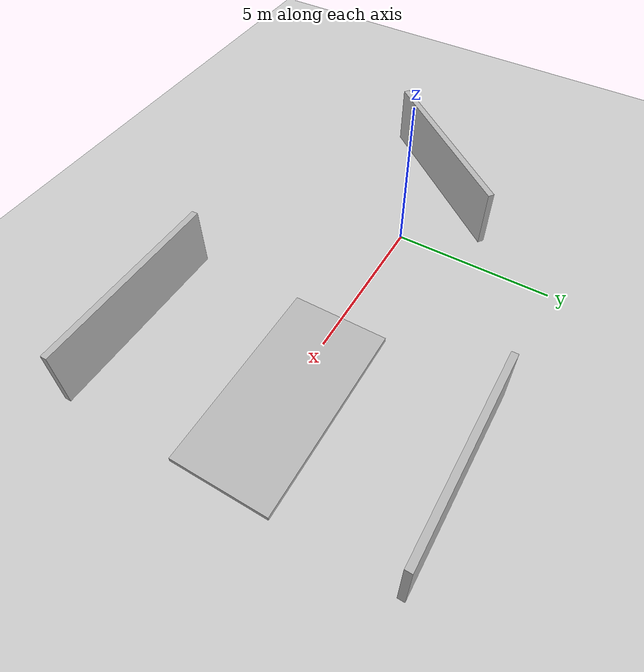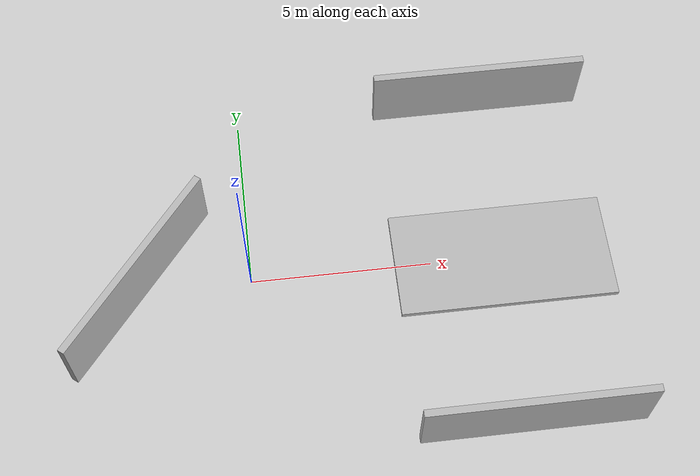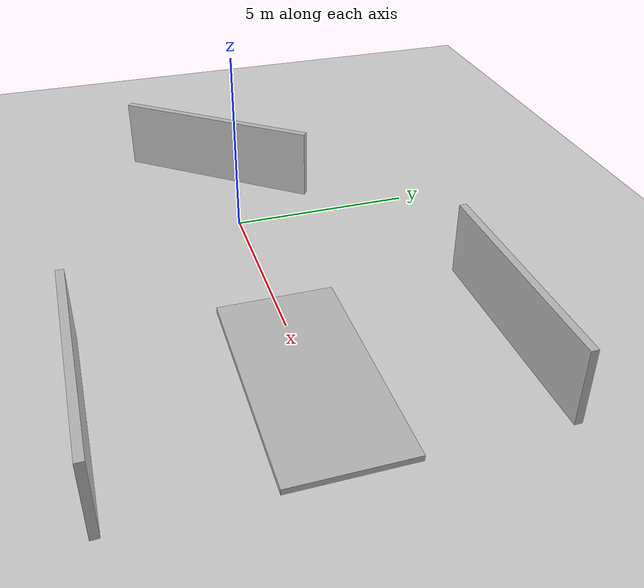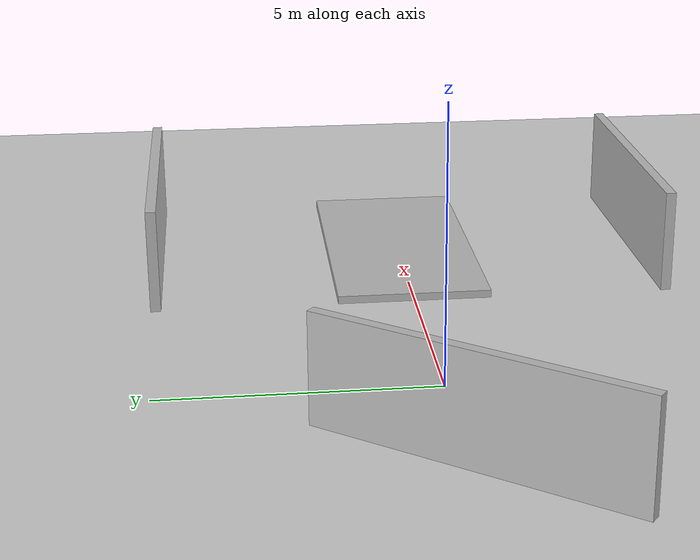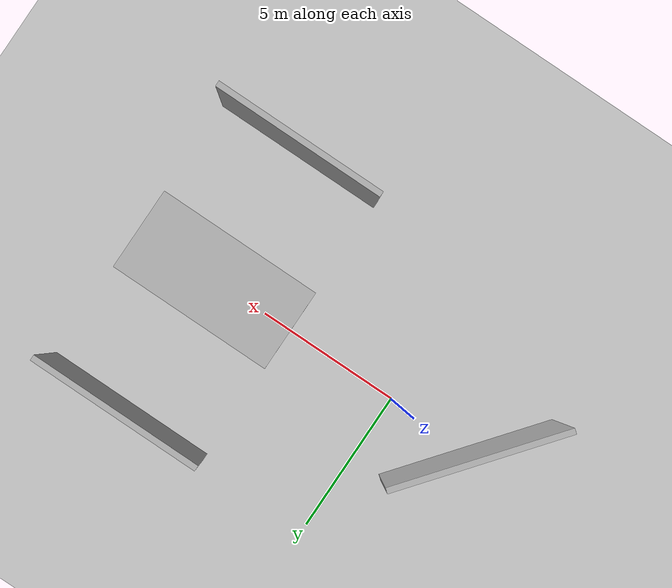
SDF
<?xml version="1.0" ?>
<sdf version="1.4">
	<world name="default">
		<scene>
			<shadows>false</shadows>
		</scene>
		<gui>
			<camera name="camera">
				<pose>3.0 0.0 1.0 0.0 0.3 3.14</pose>
			</camera>
		</gui>
		<physics type="ode">
			<gravity>0 0 -9.81</gravity>
			<real_time_update_rate>2000</real_time_update_rate>
			<max_step_size>0.0005</max_step_size>
			<ode>
				<solver>
					<type>quick</type>
					<iters>70</iters>
					<sor>1.2</sor>
				</solver>
				<constraints>
 					<cfm>0.0</cfm>
					<erp>0.2</erp>
					<contact_max_correcting_vel>100.0</contact_max_correcting_vel>
					<contact_surface_layer>0.001</contact_surface_layer>
				</constraints>
			</ode>
		</physics>
		<include>
			<uri>model://ground_plane</uri>
		</include>
		<include>
			<uri>model://sun</uri>
		</include>

		<model name="block1">
			<pose>7 0 0.075 0 0 0</pose>

			<static>true</static>
			<link name="link">
				<visual name="visual0">
					<geometry>
						<box>
							<size>6 3 0.15</size>
						</box>
					</geometry>
				</visual>
				<collision name="collision0">
					<geometry>
						<box>
							<size>6 3 0.15</size>
						</box>
					</geometry>
				</collision>
			</link>
		</model>

		<model name="wall1">
			<pose>7 -5 1 0 0 0</pose>

			<static>true</static>
			<link name="link">
				<visual name="visual0">
					<geometry>
						<box>
							<size>6 0.2 2</size>
						</box>
					</geometry>
				</visual>
				<collision name="collision0">
					<geometry>
						<box>
							<size>6 0.2 2</size>
						</box>
					</geometry>
				</collision>
			</link>
		</model>

		<model name="wall1">
			<pose>7 5 1 0 0 0</pose>

			<static>true</static>
			<link name="link">
				<visual name="visual0">
					<geometry>
						<box>
							<size>6 0.2 2</size>
						</box>
					</geometry>
				</visual>
				<collision name="collision0">
					<geometry>
						<box>
							<size>6 0.2 2</size>
						</box>
					</geometry>
				</collision>
			</link>
		</model>

		<model name="wall1">
			<pose>-3 0 1 0 0 0.9</pose>

			<static>true</static>
			<link name="link">
				<visual name="visual0">
					<geometry>
						<box>
							<size>6 0.2 2</size>
						</box>
					</geometry>
				</visual>
				<collision name="collision0">
					<geometry>
						<box>
							<size>6 0.2 2</size>
						</box>
					</geometry>
				</collision>
			</link>
		</model>

	</world>
</sdf>
